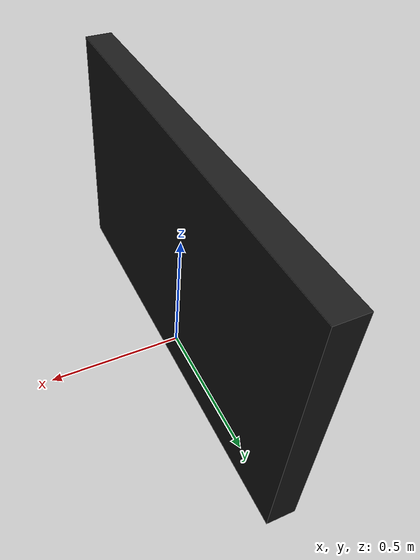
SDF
<?xml version="1.0"?>
<sdf version="1.6">
  <model name="rgo2015_final/tv/tv">
    <link name="1_link">
      <collision name="1_col">
        <geometry>
          <box>
            <size>0.1 1.5 0.92</size>
          </box>
        </geometry>
      </collision>
      <visual name="1_vis">
        <geometry>
          <box>
            <size>0.1 1.5 0.92</size>
          </box>
        </geometry>
        <material>
          <ambient>0.1 0.1 0.1 1</ambient>
        </material>
      </visual>
      <pose>0.0 0.0 0.46 0 0 0</pose>
    </link>
    <static>true</static>
  </model>
</sdf>
